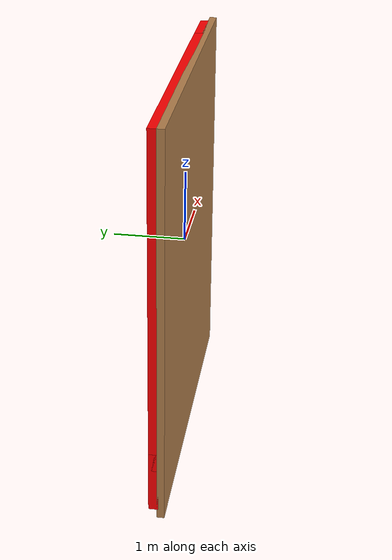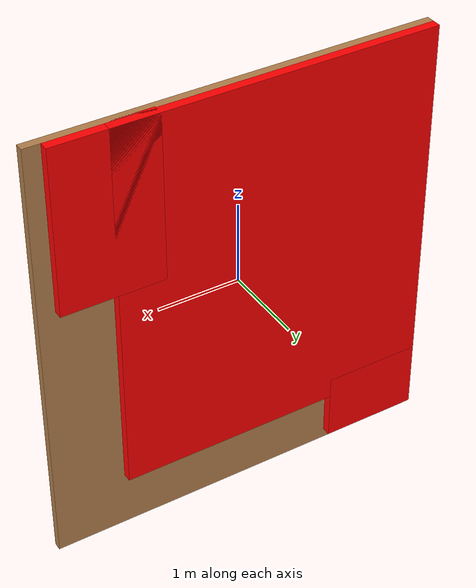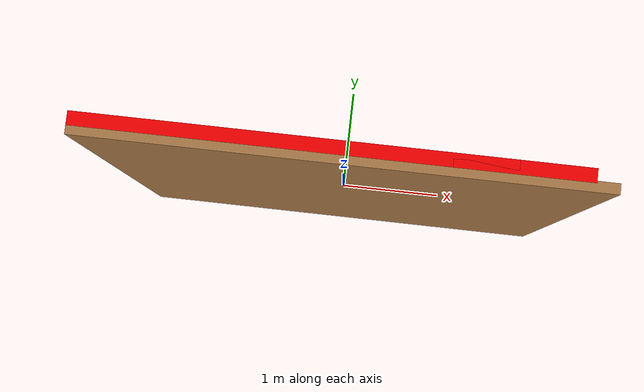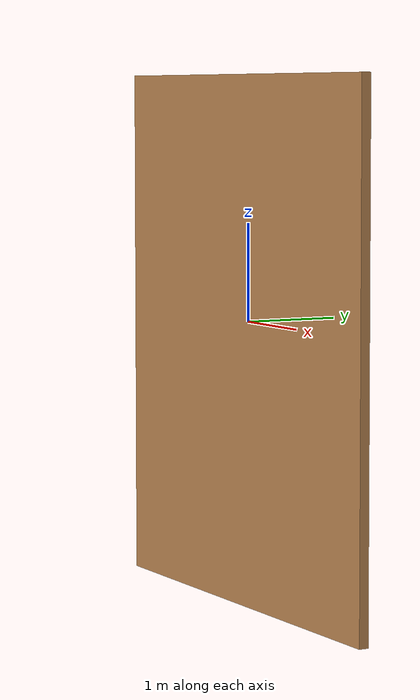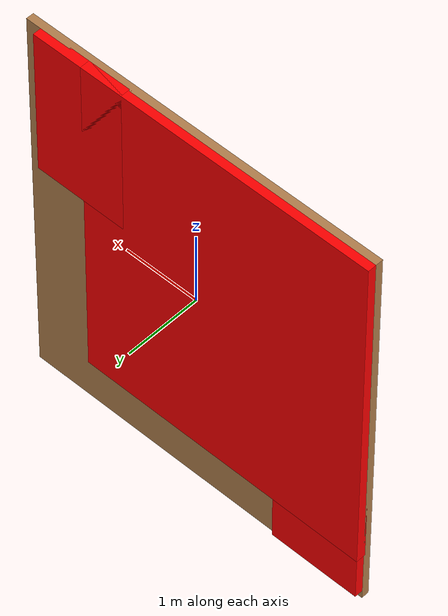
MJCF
<mujoco model="Floor_86781be7">
  <compiler autolimits="true" boundmass="0.01" angle="radian"/>
  <default>
    <default class="/">
      <default class="__VISUAL_MJT__">
        <geom contype="0" conaffinity="0" group="0" mass="1e-08"/>
      </default>
      <default class="__STRUCTURAL_MJT__">
        <geom contype="8" conaffinity="15" group="4" friction="0.90000000000000002 0.90000000000000002 0.001" density="500" solref="0.025000000000000001 1" solimp="0.998 0.998 0.001"/>
      </default>
      <default class="__DYNAMIC_MJT__">
        <geom contype="1" conaffinity="15" group="4" friction="0.90000000000000002 0.90000000000000002 0.001" density="500" solref="0.025000000000000001 1" solimp="0.998 0.998 0.001"/>
      </default>
      <default class="__ARTICULABLE_DYNAMIC_MJT__">
        <geom contype="0" conaffinity="7" group="4" friction="0.90000000000000002 0.90000000000000002 0.001" density="500" solref="0.025000000000000001 1" solimp="0.998 0.998 0.001"/>
      </default>
    </default>
  </default>
  <asset>
    <texture name="TexturesCom_WoodFine0038_1_seamless_S" type="2d" file="TexturesCom_WoodFine0038_1_seamless_albedo_S.png"/>
    <material name="material_TexturesCom_WoodFine0038_1_seamless_S" class="/" texture="TexturesCom_WoodFine0038_1_seamless_S" specular="0.5" shininess="0.5" rgba="1 1 1 1"/>
    <mesh name="Floor_86781be7_mesh_72f6a7fa" class="/" file="Floor_86781be7_mesh_72f6a7fa/Floor_86781be7_mesh_72f6a7fa.obj" scale="1 1 1" inertia="legacy"/>
  </asset>
  <worldbody>
    <body name="Floor_86781be7">
      <body name="Floor_86781be7_mesh_72f6a7fa" pos="-0 0 0" quat="1 0 0 0">
        <geom name="Floor_86781be7_mesh_72f6a7fa" class="__VISUAL_MJT__" type="mesh" material="material_TexturesCom_WoodFine0038_1_seamless_S" mesh="Floor_86781be7_mesh_72f6a7fa"/>
        <site name="Floor_86781be7_mesh_72f6a7fa_Receptacle_0" class="/" type="box" rgba="1 0 0 1" size="1.9751672744750977 0.064627379179000854 2.3339455127716064" pos="-0.45483255386352539 0.045272618532180786 0.16605448722839355" quat="0 1 0 0"/>
        <site name="Floor_86781be7_mesh_72f6a7fa_Receptacle_1" class="/" type="box" rgba="1 0 0 1" size="0.60485649108886719 0.064627379179000854 0.43138527870178223" pos="-1.8251433372497559 0.045272618532180786 -2.3427832126617432" quat="0 1 0 0"/>
        <site name="Floor_86781be7_mesh_72f6a7fa_Receptacle_2" class="/" type="box" rgba="1 0 0 1" size="0.62477397918701172 0.064627379179000854 1.016487717628479" pos="1.5689282417297363 0.045272618532180786 1.483512282371521" quat="0 1 0 0"/>
        <geom name="Floor_86781be7_mesh_72f6a7fa_PrimitiveCollider_0" class="__DYNAMIC_MJT__" type="box" size="2.4149999618530273 0.049999997019767761 2.6999998092651367" rgba="0 1 0 1" pos="-0.014999866485595703 -0.049999997019767761 -0.19999992847442627" quat="0 1 0 0"/>
      </body>
    </body>
  </worldbody>
</mujoco>
